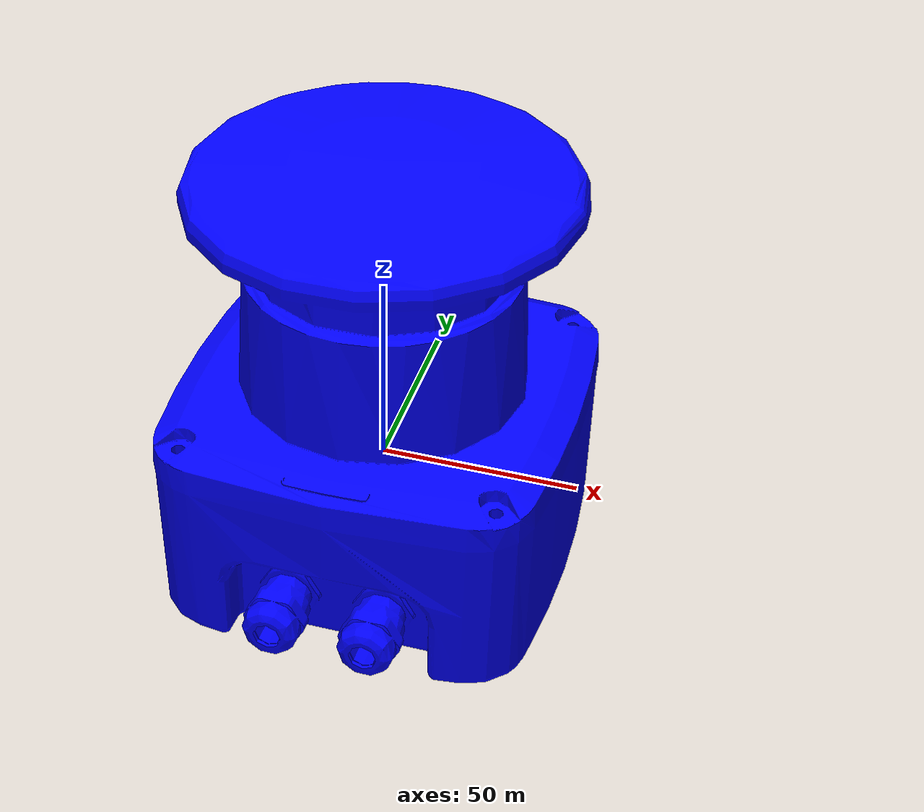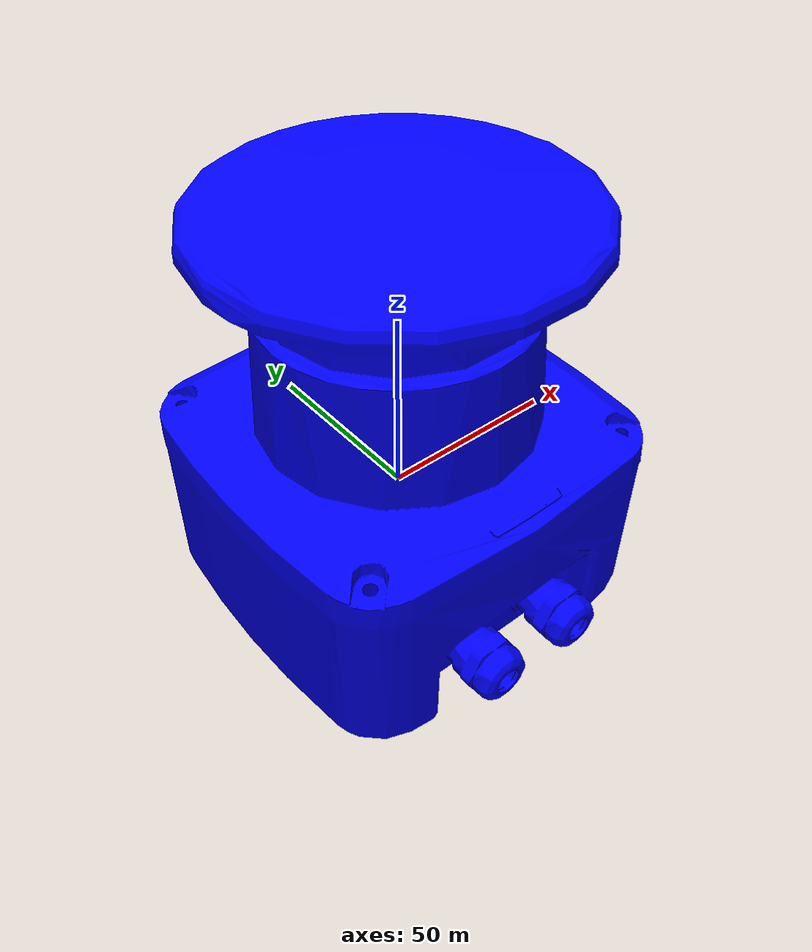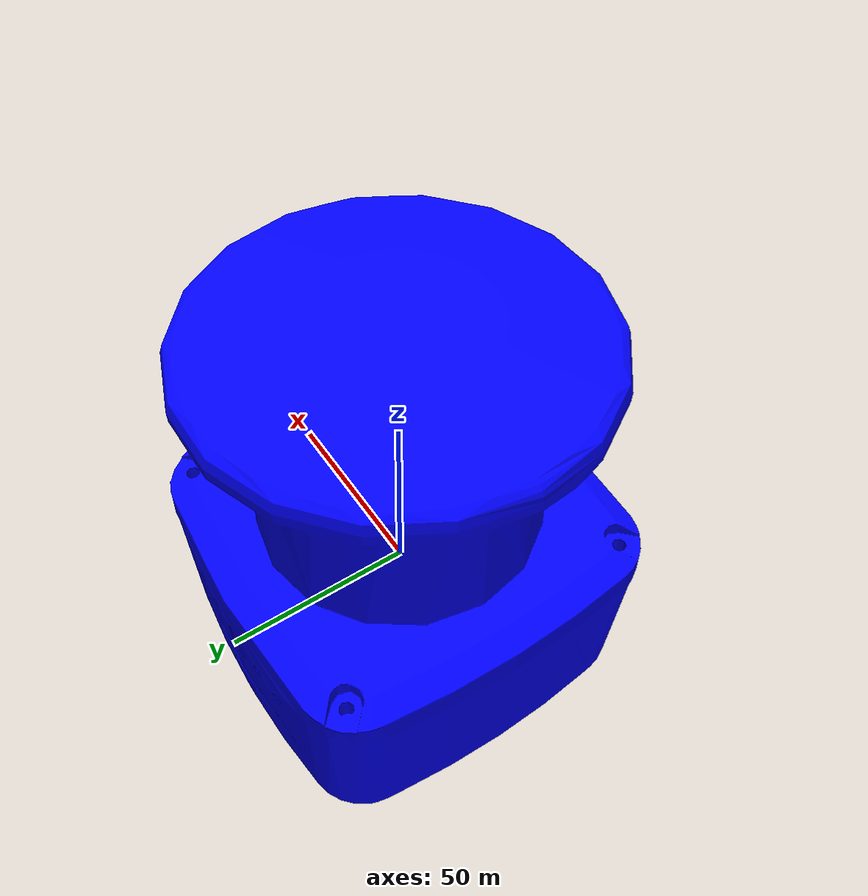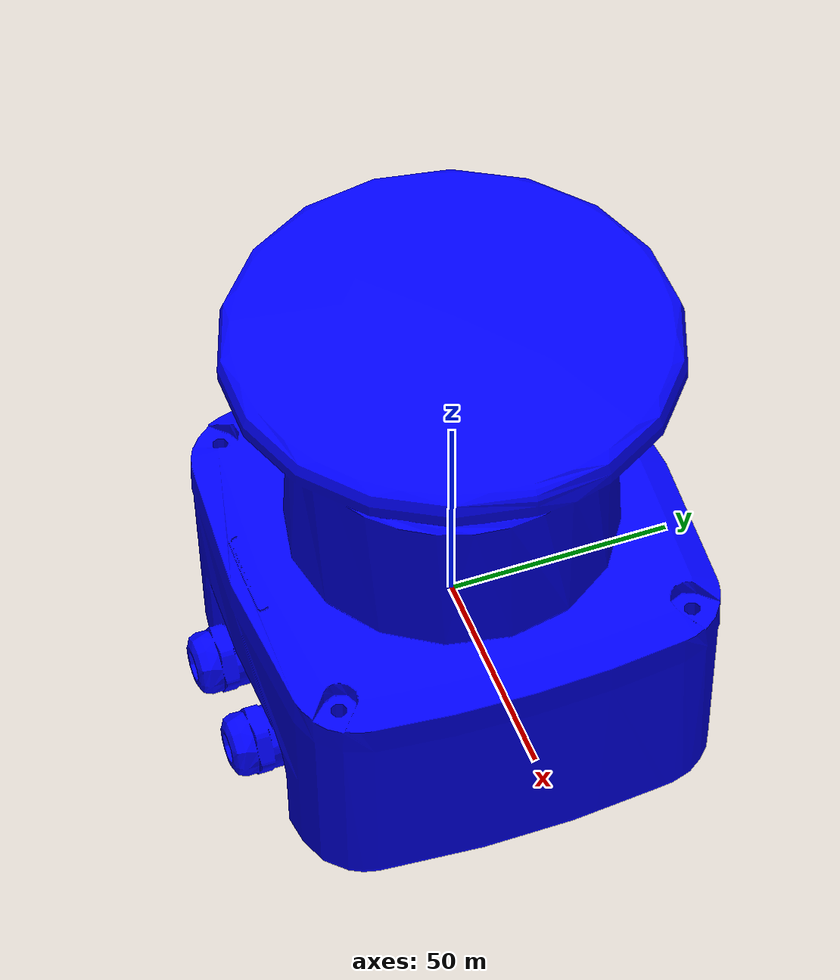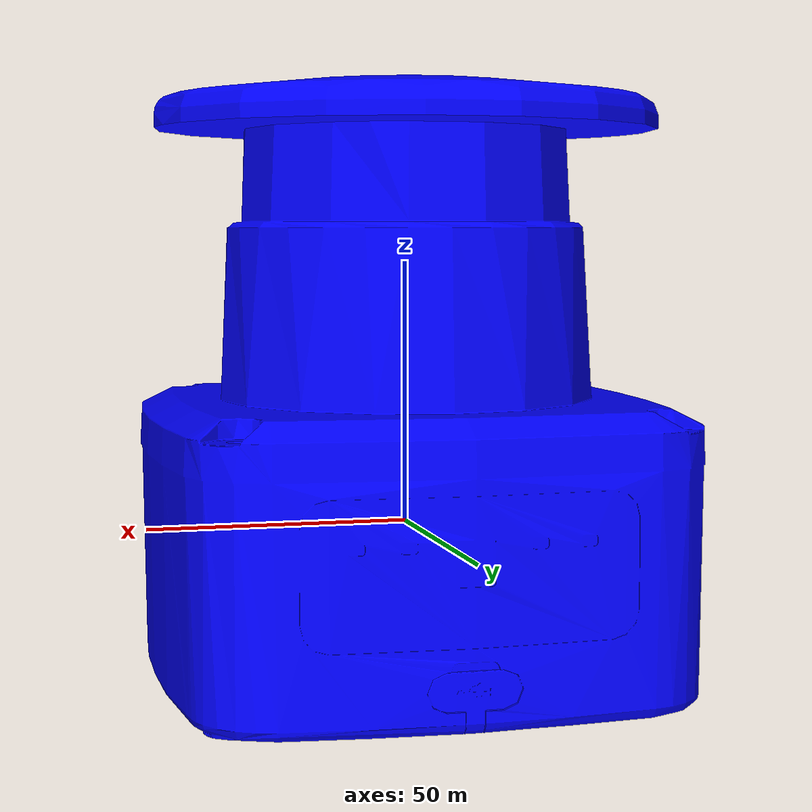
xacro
<?xml version="1.0"?>
<robot xmlns:controller="http://playerstage.sourceforge.net/gazebo/xmlschema/#controller"
  xmlns:interface="http://playerstage.sourceforge.net/gazebo/xmlschema/#interface"
  xmlns:sensor="http://playerstage.sourceforge.net/gazebo/xmlschema/#sensor"
  xmlns:xacro="http://ros.org/wiki/xacro"
  name="sdkeli_klm_udp">

  <xacro:include filename="$(find sdkeli_klm_udp)/urdf/sdkeli_klm_udp.urdf.xacro" />

  <xacro:sdkeli_klm name="laser2" ros_topic="keli_scan2" />
</robot>

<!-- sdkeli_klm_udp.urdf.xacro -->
<robot xmlns:controller="http://playerstage.sourceforge.net/gazebo/xmlschema/#controller"
  xmlns:interface="http://playerstage.sourceforge.net/gazebo/xmlschema/#interface"
  xmlns:sensor="http://playerstage.sourceforge.net/gazebo/xmlschema/#sensor"
  xmlns:xacro="http://ros.org/wiki/xacro">

  <xacro:macro name="sdkeli_klm" params="name ros_topic">
    <xacro:sdkeli_klm_udp name="${name}" ros_topic="${ros_topic}"
      length="0.06" width="0.06" height="0.086" mass="0.250" z_offset="0.06296"
      min_range="0.01" max_range="100.0"
      mesh="package://sdkeli_klm_udp/meshes/sdkeli_klm.stl" />
  </xacro:macro>

  <xacro:macro name="sdkeli_klm_udp" params="name ros_topic length width height mass z_offset min_range max_range mesh">
    <!-- z_offset: distance between base plate and laser center (= center of mesh) -->
    <link name="${name}_mount_link">
      <inertial>
        <mass value="0.001" />
        <origin xyz="0 0 0" />
        <inertia ixx="0.000001" ixy="0.0" ixz="0.0"
          iyy="0.000001" iyz="0.0" izz="0.000001" />
      </inertial>
    </link>

    <joint name="${name}_joint" type="fixed">
      <parent link="${name}_mount_link" />
      <child link="${name}" />
      <origin rpy="0 0 0" xyz="0 0 ${z_offset}"/>
    </joint>

    <link name="${name}">
      <visual>
        <geometry>
          <mesh filename="${mesh}" />
        </geometry>
        <material name="blue" >
          <color rgba="0 0 1 1" />
        </material>
      </visual>
      <collision>
        <geometry>
          <mesh filename="${mesh}" />
        </geometry>
      </collision>
      <inertial>
        <mass value="${mass}" />
        <origin xyz="0 0 -0.026" />
        <inertia ixx="${0.0833333 * mass * (width * width + height * height)}" ixy="0.0" ixz="0.0"
          iyy="${0.0833333 * mass * (length * length + height * height)}" iyz="0.0"
          izz="${0.0833333 * mass * (length * length + width * width)}" />
      </inertial>
    </link>
    <xacro:sdkeli_klm_laser_gazebo_v0 name="${name}" link="${name}" ros_topic="${ros_topic}" update_rate="15.0" min_angle="-2.357" max_angle="2.357" min_range="${min_range}" max_range="${max_range}"/>
  </xacro:macro>

  <xacro:macro name="sdkeli_klm_laser_gazebo_v0" params="name link ros_topic update_rate min_angle max_angle min_range max_range">
    <gazebo reference="${link}">
      <material value="Gazebo/Blue" />
      <sensor type="ray" name="${name}">
        <always_on>true</always_on>
        <update_rate>${update_rate}</update_rate>
        <pose>0 0 0 0 0 0</pose>
        <visualize>false</visualize>
        <ray>
          <scan>
            <horizontal>
              <samples>271</samples>
              <resolution>1</resolution>
              <min_angle>${min_angle}</min_angle>
              <max_angle>${max_angle}</max_angle>
            </horizontal>
          </scan>
          <range>
            <min>${min_range}</min>
            <max>${max_range}</max>
            <resolution>0.01</resolution>
          </range>
        </ray>
        <plugin name="gazebo_ros_${name}_controller" filename="libgazebo_ros_laser.so">
          <gaussianNoise>0.005</gaussianNoise>
          <alwaysOn>true</alwaysOn>
          <updateRate>${update_rate}</updateRate>
          <topicName>${ros_topic}</topicName>
          <frameName>${link}</frameName>
        </plugin>
      </sensor>
    </gazebo>
  </xacro:macro>
</robot>
